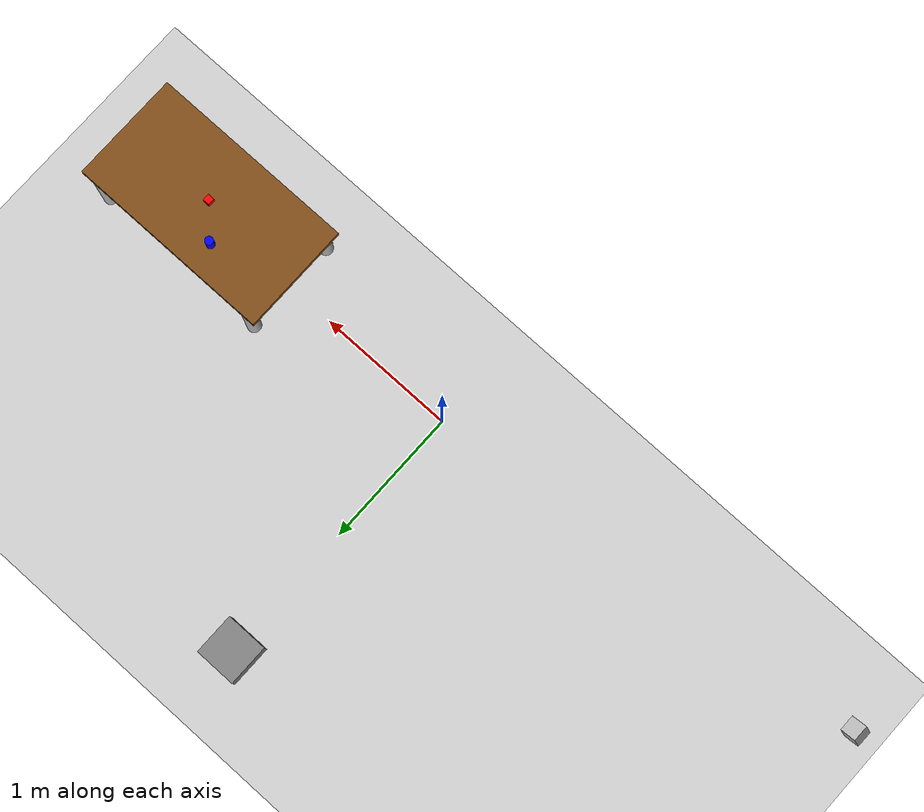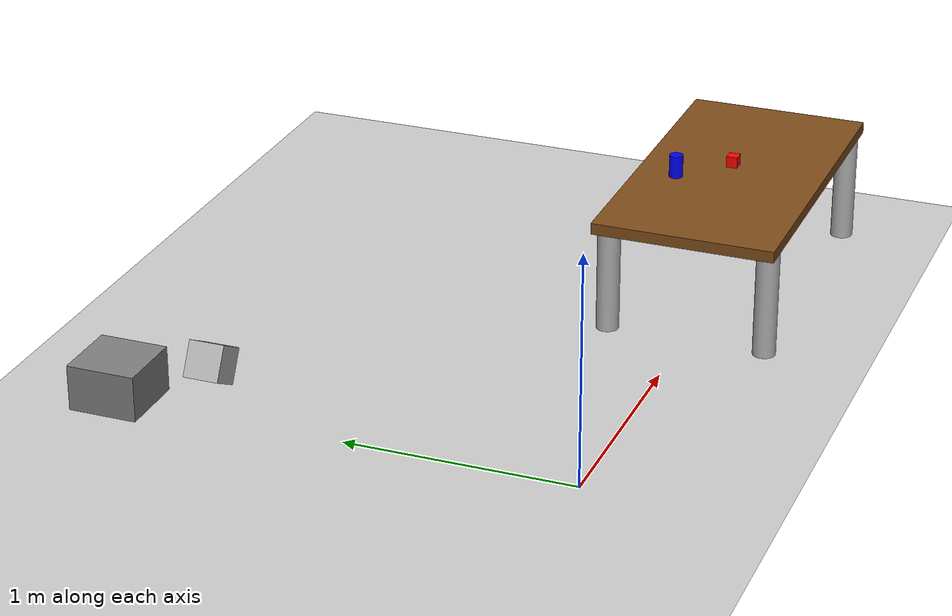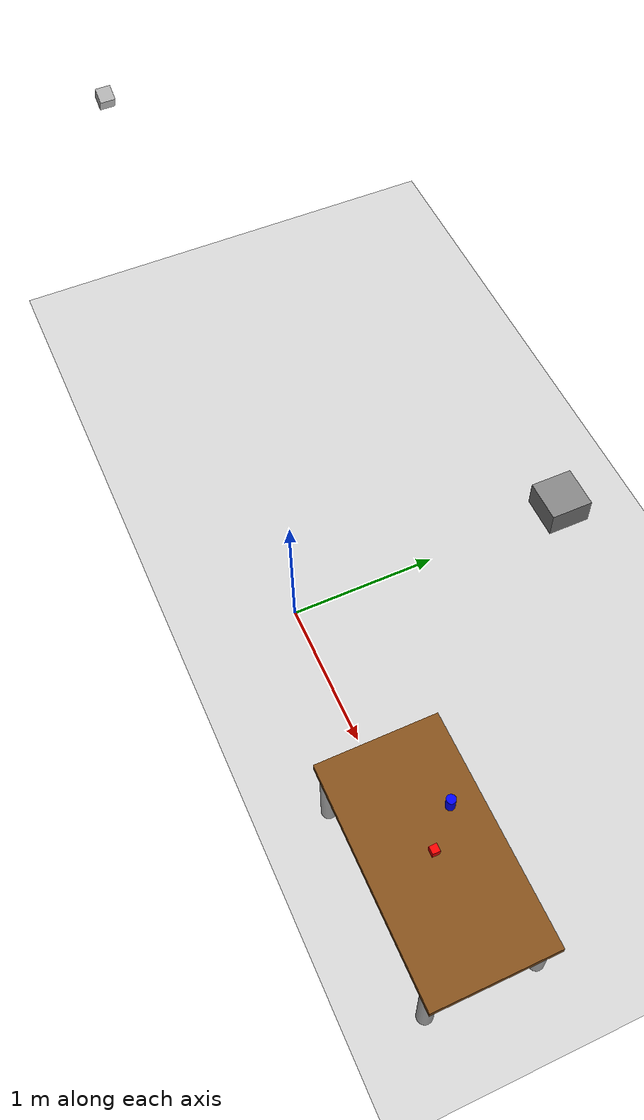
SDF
<?xml version="1.0"?>
<sdf version="1.6">
  <world name="ainex_world">
    <!-- Physics settings -->
    <physics type="ode">
      <max_step_size>0.001</max_step_size>
      <real_time_factor>1</real_time_factor>
      <real_time_update_rate>1000</real_time_update_rate>
      <gravity>0 0 -9.81</gravity>
    </physics>

    <!-- Scene settings -->
    <scene>
      <ambient>0.4 0.4 0.4 1</ambient>
      <background>0.7 0.7 0.7 1</background>
      <shadows>true</shadows>
    </scene>

    <!-- Sun light -->
    <include>
      <uri>model://sun</uri>
    </include>

    <!-- Ground plane -->
    <include>
      <uri>model://ground_plane</uri>
    </include>

    <!-- Testing area with obstacles -->
    <!-- Table -->
    <model name="table">
      <static>true</static>
      <pose>2 0 0.5 0 0 0</pose>
      <link name="link">
        <collision name="collision">
          <geometry>
            <box>
              <size>1.5 0.8 0.05</size>
            </box>
          </geometry>
        </collision>
        <visual name="visual">
          <geometry>
            <box>
              <size>1.5 0.8 0.05</size>
            </box>
          </geometry>
          <material>
            <ambient>0.5 0.3 0.1 1</ambient>
            <diffuse>0.5 0.3 0.1 1</diffuse>
          </material>
        </visual>
      </link>
      <!-- Table legs -->
      <link name="leg1">
        <pose>0.65 0.35 -0.25 0 0 0</pose>
        <collision name="collision">
          <geometry>
            <cylinder>
              <radius>0.05</radius>
              <length>0.5</length>
            </cylinder>
          </geometry>
        </collision>
        <visual name="visual">
          <geometry>
            <cylinder>
              <radius>0.05</radius>
              <length>0.5</length>
            </cylinder>
          </geometry>
        </visual>
      </link>
      <link name="leg2">
        <pose>-0.65 0.35 -0.25 0 0 0</pose>
        <collision name="collision">
          <geometry>
            <cylinder>
              <radius>0.05</radius>
              <length>0.5</length>
            </cylinder>
          </geometry>
        </collision>
        <visual name="visual">
          <geometry>
            <cylinder>
              <radius>0.05</radius>
              <length>0.5</length>
            </cylinder>
          </geometry>
        </visual>
      </link>
      <link name="leg3">
        <pose>0.65 -0.35 -0.25 0 0 0</pose>
        <collision name="collision">
          <geometry>
            <cylinder>
              <radius>0.05</radius>
              <length>0.5</length>
            </cylinder>
          </geometry>
        </collision>
        <visual name="visual">
          <geometry>
            <cylinder>
              <radius>0.05</radius>
              <length>0.5</length>
            </cylinder>
          </geometry>
        </visual>
      </link>
      <link name="leg4">
        <pose>-0.65 -0.35 -0.25 0 0 0</pose>
        <collision name="collision">
          <geometry>
            <cylinder>
              <radius>0.05</radius>
              <length>0.5</length>
            </cylinder>
          </geometry>
        </collision>
        <visual name="visual">
          <geometry>
            <cylinder>
              <radius>0.05</radius>
              <length>0.5</length>
            </cylinder>
          </geometry>
        </visual>
      </link>
    </model>

    <!-- Objects on table -->
    <model name="red_cube">
      <pose>2 0 0.575 0 0 0</pose>
      <link name="link">
        <inertial>
          <mass>0.1</mass>
          <inertia>
            <ixx>0.000166667</ixx>
            <iyy>0.000166667</iyy>
            <izz>0.000166667</izz>
          </inertia>
        </inertial>
        <collision name="collision">
          <geometry>
            <box>
              <size>0.05 0.05 0.05</size>
            </box>
          </geometry>
        </collision>
        <visual name="visual">
          <geometry>
            <box>
              <size>0.05 0.05 0.05</size>
            </box>
          </geometry>
          <material>
            <ambient>1 0 0 1</ambient>
            <diffuse>1 0 0 1</diffuse>
          </material>
        </visual>
      </link>
    </model>

    <model name="blue_cylinder">
      <pose>1.8 0.2 0.6 0 0 0</pose>
      <link name="link">
        <inertial>
          <mass>0.15</mass>
        </inertial>
        <collision name="collision">
          <geometry>
            <cylinder>
              <radius>0.03</radius>
              <length>0.1</length>
            </cylinder>
          </geometry>
        </collision>
        <visual name="visual">
          <geometry>
            <cylinder>
              <radius>0.03</radius>
              <length>0.1</length>
            </cylinder>
          </geometry>
          <material>
            <ambient>0 0 1 1</ambient>
            <diffuse>0 0 1 1</diffuse>
          </material>
        </visual>
      </link>
    </model>

    <!-- Walking obstacles -->
    <model name="obstacle1">
      <static>true</static>
      <pose>0 2 0.1 0 0 0</pose>
      <link name="link">
        <collision name="collision">
          <geometry>
            <box>
              <size>0.3 0.3 0.2</size>
            </box>
          </geometry>
        </collision>
        <visual name="visual">
          <geometry>
            <box>
              <size>0.3 0.3 0.2</size>
            </box>
          </geometry>
          <material>
            <ambient>0.5 0.5 0.5 1</ambient>
            <diffuse>0.5 0.5 0.5 1</diffuse>
          </material>
        </visual>
      </link>
    </model>

    <!-- Camera for monitoring -->
    <model name="camera">
      <static>true</static>
      <pose>-3 0 2 0 0.5 0</pose>
      <link name="link">
        <visual name="visual">
          <geometry>
            <box>
              <size>0.1 0.1 0.1</size>
            </box>
          </geometry>
        </visual>
        <sensor name="camera" type="camera">
          <camera>
            <horizontal_fov>1.047</horizontal_fov>
            <image>
              <width>1920</width>
              <height>1080</height>
            </image>
            <clip>
              <near>0.1</near>
              <far>100</far>
            </clip>
          </camera>
          <always_on>1</always_on>
          <update_rate>30</update_rate>
          <visualize>true</visualize>
        </sensor>
      </link>
    </model>

  </world>
</sdf>
